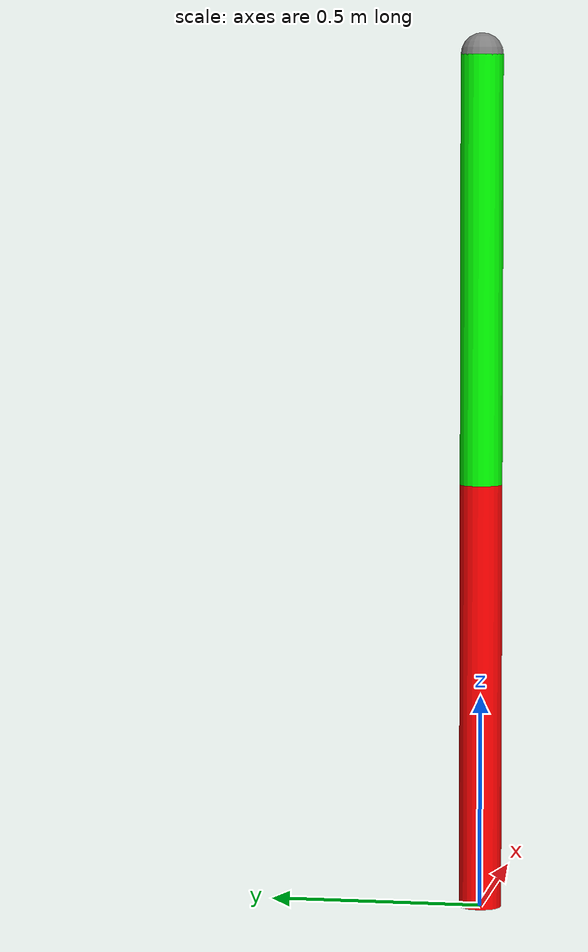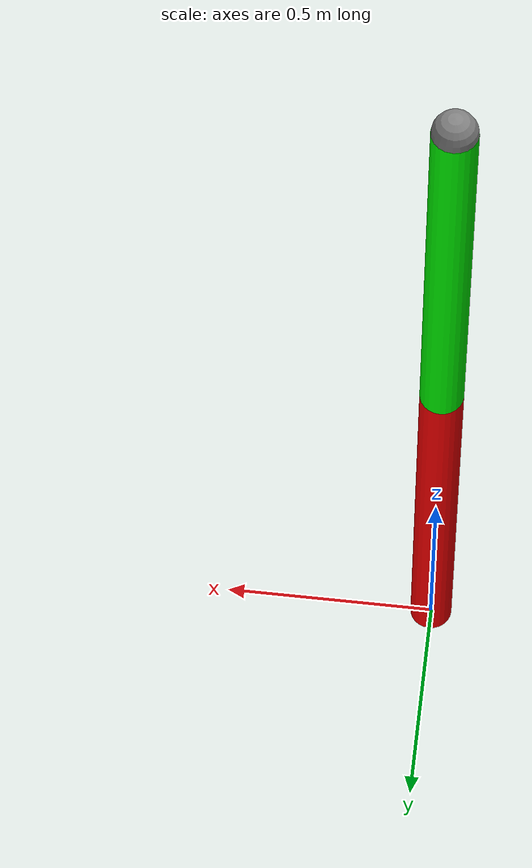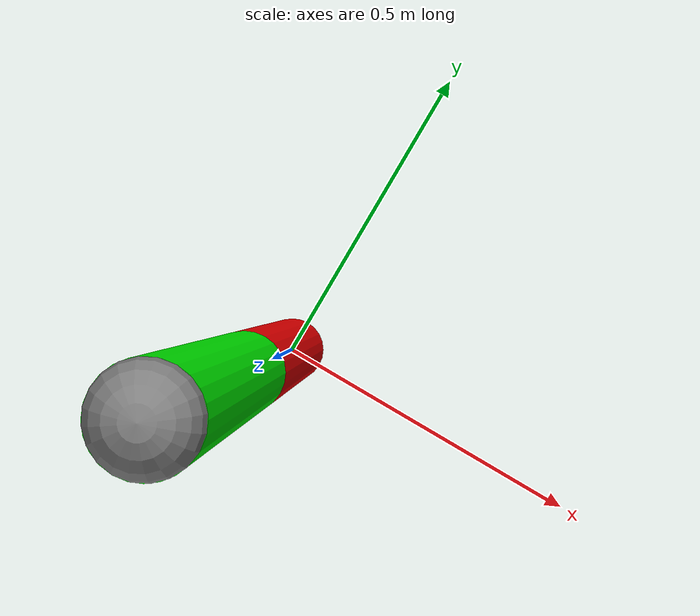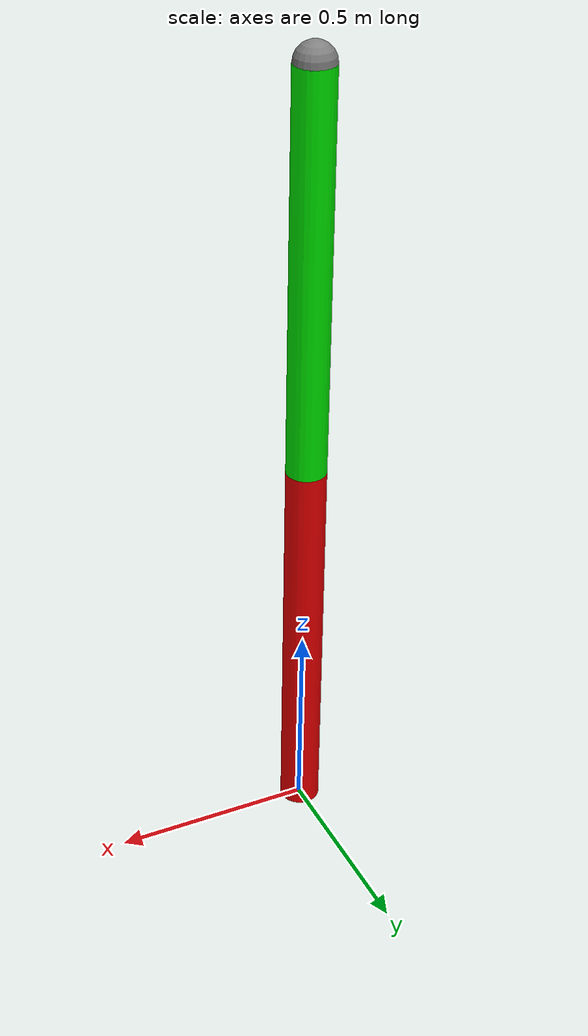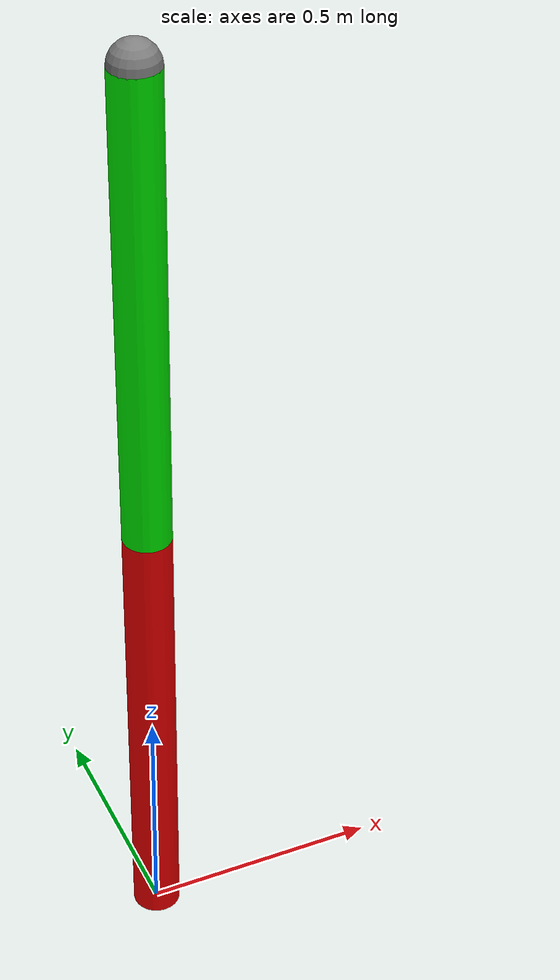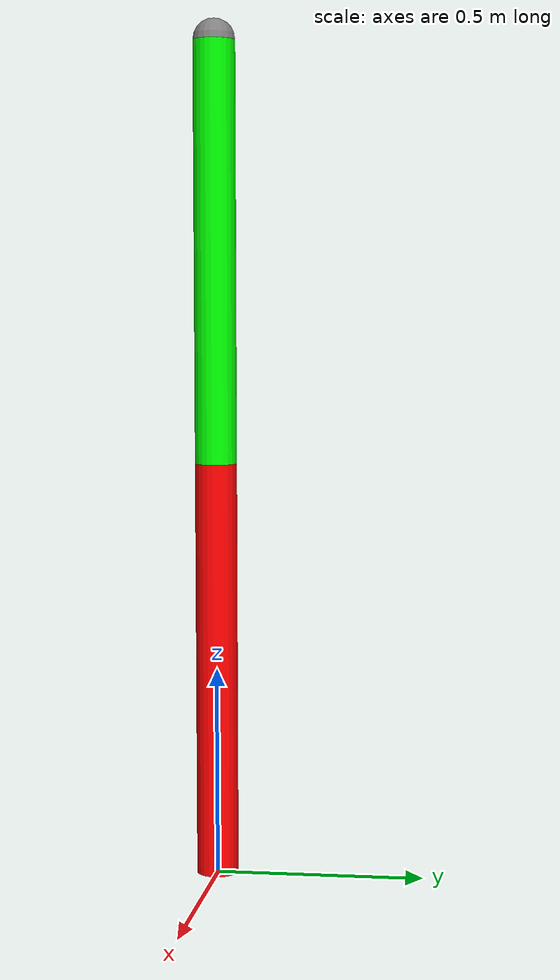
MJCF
<mujoco>
  <option gravity ="0 0 0" timestep="0.002"/>

  <worldbody>
    <light diffuse=".5 .5 .5" pos="0 0 3" dir="0 0 -1"/>

    <body name='link_1'>
      <joint name='joint_1' type='hinge' axis='0 -1 0' pos='0 0 0' damping='1'/>
      <geom name='cylinder_1' type='cylinder' size='0.05 0.5' rgba='1 0 0 1' mass='1' pos = '0 0 0.5'/>

      <body name='link_2' pos='0 0 1'>
        <joint name='joint_2' type='hinge' axis='0 -1 0' pos='0 0 0' damping='1'/>
        <geom name='cylinder_2' type='cylinder' size='0.05 0.5' rgba='0 1 0 1' mass='1' pos = '0 0 0.5'/>
        <site name='end_effector' type='sphere' size='0.05' pos='0 0 1'/>
      </body>

    </body>

  </worldbody>

  <sensor>
    <framepos objtype='site' objname='end_effector'/>
  </sensor>

  <actuator>
    <motor name='torque_1' joint='joint_1'/>

    <motor name='torque_2' joint='joint_2'/>
  </actuator>

</mujoco>
